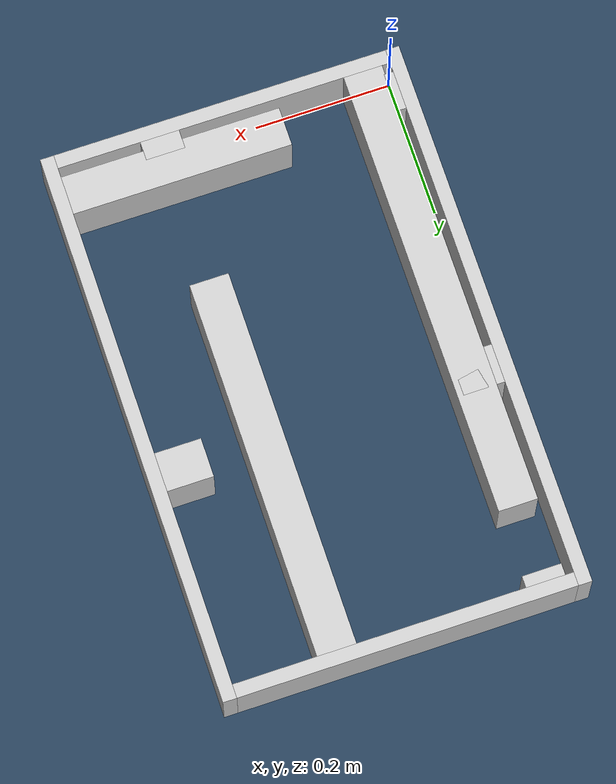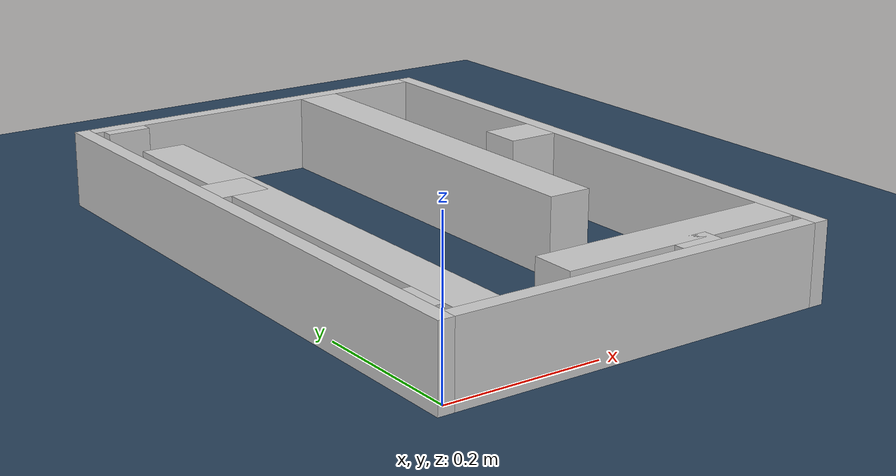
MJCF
<?xml version="1.0" ?>
<mujoco model="generated_real_template">
  <compiler angle="degree"/>
  <option timestep="0.002" integrator="implicitfast" iterations="100" cone="elliptic"/>
  <default>
    <geom density="1"/>
  </default>
  <asset>
    <texture builtin="gradient" height="3072" rgb1="0.3 0.5 0.7" rgb2="0 0 0" type="skybox" width="512"/>
    <texture builtin="checker" height="300" mark="edge" markrgb="0.8 0.8 0.8" name="groundplane" rgb1="0.2 0.3 0.4" rgb2="0.1 0.2 0.3" type="2d" width="300"/>
    <material name="groundplane" reflectance="0.2" texrepeat="5 5" texture="groundplane" texuniform="true"/>
  </asset>
  <worldbody>
    <light dir="0 0 -1" directional="true" pos="0 0 1.5"/>
    <geom name="floor" type="plane" condim="4" friction="0.5 0.005 0.001" material="groundplane" size="0 0 0.05"/>
    <body name="walls">
      <geom name="wall_boundary_left" type="box" condim="4" friction="1.0 0.005 0.0001" rgba="0.8 0.8 0.8 1" pos="-0.010000 0.387500 0.050000" euler="0 0 0.000000" size="0.010000 0.407500 0.050000"/>
      <geom name="wall_boundary_right" type="box" condim="4" friction="1.0 0.005 0.0001" rgba="0.8 0.8 0.8 1" pos="0.500000 0.387500 0.050000" euler="0 0 0.000000" size="0.010000 0.407500 0.050000"/>
      <geom name="wall_boundary_bottom" type="box" condim="4" friction="1.0 0.005 0.0001" rgba="0.8 0.8 0.8 1" pos="0.245000 -0.010000 0.050000" euler="0 0 0.000000" size="0.245000 0.010000 0.050000"/>
      <geom name="wall_boundary_top" type="box" condim="4" friction="1.0 0.005 0.0001" rgba="0.8 0.8 0.8 1" pos="0.245000 0.785000 0.050000" euler="0 0 0.000000" size="0.245000 0.010000 0.050000"/>
      <geom name="wall_inner_1_1" type="box" condim="4" friction="1.0 0.005 0.0001" rgba="0.8 0.8 0.8 1" pos="0.340718 0.013689 0.050000" euler="0 0 90.000000" size="0.013689 0.028500 0.050000"/>
      <geom name="wall_inner_1_2" type="box" condim="4" friction="1.0 0.005 0.0001" rgba="0.8 0.8 0.8 1" pos="0.340718 0.498013 0.050000" euler="0 0 90.000000" size="0.276987 0.028500 0.050000"/>
      <geom name="wall_inner_2_1" type="box" condim="4" friction="1.0 0.005 0.0001" rgba="0.8 0.8 0.8 1" pos="0.040451 0.331138 0.050000" euler="0 0 90.000000" size="0.331138 0.028500 0.050000"/>
      <geom name="wall_inner_2_2" type="box" condim="4" friction="1.0 0.005 0.0001" rgba="0.8 0.8 0.8 1" pos="0.040451 0.766597 0.050000" euler="0 0 90.000000" size="0.008403 0.028500 0.050000"/>
      <geom name="wall_inner_3_1" type="box" condim="4" friction="1.0 0.005 0.0001" rgba="0.8 0.8 0.8 1" pos="0.030223 0.462573 0.050000" euler="0 0 0.000000" size="0.030223 0.028500 0.050000"/>
      <geom name="wall_inner_3_2" type="box" condim="4" friction="1.0 0.005 0.0001" rgba="0.8 0.8 0.8 1" pos="0.456219 0.462573 0.050000" euler="0 0 0.000000" size="0.033781 0.028500 0.050000"/>
      <geom name="wall_inner_4_1" type="box" condim="4" friction="1.0 0.005 0.0001" rgba="0.8 0.8 0.8 1" pos="0.006872 0.042195 0.050000" euler="0 0 0.000000" size="0.006872 0.028500 0.050000"/>
      <geom name="wall_inner_4_2" type="box" condim="4" friction="1.0 0.005 0.0001" rgba="0.8 0.8 0.8 1" pos="0.329526 0.042195 0.050000" euler="0 0 0.000000" size="0.160474 0.028500 0.050000"/>
    </body>
  </worldbody>
</mujoco>
